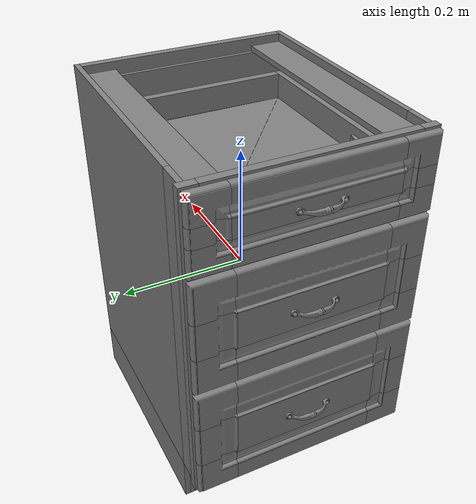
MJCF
<mujoco model="partnet_13aeab12a8ccdb244da5feafe6f1c8fc">
    <compiler angle="radian" />
    <size njmax="500" nconmax="100" />
    <asset>
        <mesh name="original-95" file="original-95.stl" scale="0.4 0.4 0.4" />
        <mesh name="original-86" file="original-86.stl" scale="0.4 0.4 0.4" />
        <mesh name="original-89" file="original-89.stl" scale="0.4 0.4 0.4" />
        <mesh name="original-90" file="original-90.stl" scale="0.4 0.4 0.4" />
        <mesh name="original-91" file="original-91.stl" scale="0.4 0.4 0.4" />
        <mesh name="original-88" file="original-88.stl" scale="0.4 0.4 0.4" />
        <mesh name="original-93" file="original-93.stl" scale="0.4 0.4 0.4" />
        <mesh name="original-87" file="original-87.stl" scale="0.4 0.4 0.4" />
        <mesh name="original-92" file="original-92.stl" scale="0.4 0.4 0.4" />
        <mesh name="original-96" file="original-96.stl" scale="0.4 0.4 0.4" />
        <mesh name="original-78" file="original-78.stl" scale="0.4 0.4 0.4" />
        <mesh name="original-82" file="original-82.stl" scale="0.4 0.4 0.4" />
        <mesh name="original-77" file="original-77.stl" scale="0.4 0.4 0.4" />
        <mesh name="original-83" file="original-83.stl" scale="0.4 0.4 0.4" />
        <mesh name="original-81" file="original-81.stl" scale="0.4 0.4 0.4" />
        <mesh name="original-80" file="original-80.stl" scale="0.4 0.4 0.4" />
        <mesh name="original-98" file="original-98.stl" scale="0.4 0.4 0.4" />
        <mesh name="original-100" file="original-100.stl" scale="0.4 0.4 0.4" />
        <mesh name="original-99" file="original-99.stl" scale="0.4 0.4 0.4" />
        <mesh name="original-84" file="original-84.stl" scale="0.4 0.4 0.4" />
        <mesh name="original-22" file="original-22.stl" scale="0.4 0.4 0.4" />
        <mesh name="original-34" file="original-34.stl" scale="0.4 0.4 0.4" />
        <mesh name="original-38" file="original-38.stl" scale="0.4 0.4 0.4" />
        <mesh name="original-44" file="original-44.stl" scale="0.4 0.4 0.4" />
        <mesh name="original-41" file="original-41.stl" scale="0.4 0.4 0.4" />
        <mesh name="original-35" file="original-35.stl" scale="0.4 0.4 0.4" />
        <mesh name="original-36" file="original-36.stl" scale="0.4 0.4 0.4" />
        <mesh name="original-39" file="original-39.stl" scale="0.4 0.4 0.4" />
        <mesh name="original-40" file="original-40.stl" scale="0.4 0.4 0.4" />
        <mesh name="original-37" file="original-37.stl" scale="0.4 0.4 0.4" />
        <mesh name="original-43" file="original-43.stl" scale="0.4 0.4 0.4" />
        <mesh name="original-26" file="original-26.stl" scale="0.4 0.4 0.4" />
        <mesh name="original-25" file="original-25.stl" scale="0.4 0.4 0.4" />
        <mesh name="original-30" file="original-30.stl" scale="0.4 0.4 0.4" />
        <mesh name="original-31" file="original-31.stl" scale="0.4 0.4 0.4" />
        <mesh name="original-29" file="original-29.stl" scale="0.4 0.4 0.4" />
        <mesh name="original-28" file="original-28.stl" scale="0.4 0.4 0.4" />
        <mesh name="original-46" file="original-46.stl" scale="0.4 0.4 0.4" />
        <mesh name="original-47" file="original-47.stl" scale="0.4 0.4 0.4" />
        <mesh name="original-48" file="original-48.stl" scale="0.4 0.4 0.4" />
        <mesh name="original-32" file="original-32.stl" scale="0.4 0.4 0.4" />
        <mesh name="original-70" file="original-70.stl" scale="0.4 0.4 0.4" />
        <mesh name="original-65" file="original-65.stl" scale="0.4 0.4 0.4" />
        <mesh name="original-66" file="original-66.stl" scale="0.4 0.4 0.4" />
        <mesh name="original-63" file="original-63.stl" scale="0.4 0.4 0.4" />
        <mesh name="original-62" file="original-62.stl" scale="0.4 0.4 0.4" />
        <mesh name="original-67" file="original-67.stl" scale="0.4 0.4 0.4" />
        <mesh name="original-64" file="original-64.stl" scale="0.4 0.4 0.4" />
        <mesh name="original-60" file="original-60.stl" scale="0.4 0.4 0.4" />
        <mesh name="original-61" file="original-61.stl" scale="0.4 0.4 0.4" />
        <mesh name="original-69" file="original-69.stl" scale="0.4 0.4 0.4" />
        <mesh name="original-52" file="original-52.stl" scale="0.4 0.4 0.4" />
        <mesh name="original-56" file="original-56.stl" scale="0.4 0.4 0.4" />
        <mesh name="original-51" file="original-51.stl" scale="0.4 0.4 0.4" />
        <mesh name="original-57" file="original-57.stl" scale="0.4 0.4 0.4" />
        <mesh name="original-54" file="original-54.stl" scale="0.4 0.4 0.4" />
        <mesh name="original-55" file="original-55.stl" scale="0.4 0.4 0.4" />
        <mesh name="original-72" file="original-72.stl" scale="0.4 0.4 0.4" />
        <mesh name="original-73" file="original-73.stl" scale="0.4 0.4 0.4" />
        <mesh name="original-74" file="original-74.stl" scale="0.4 0.4 0.4" />
        <mesh name="original-58" file="original-58.stl" scale="0.4 0.4 0.4" />
        <mesh name="original-21" file="original-21.stl" scale="0.4 0.4 0.4" />
        <mesh name="original-20" file="original-20.stl" scale="0.4 0.4 0.4" />
        <mesh name="original-17" file="original-17.stl" scale="0.4 0.4 0.4" />
        <mesh name="original-15" file="original-15.stl" scale="0.4 0.4 0.4" />
        <mesh name="original-14" file="original-14.stl" scale="0.4 0.4 0.4" />
        <mesh name="original-11" file="original-11.stl" scale="0.4 0.4 0.4" />
        <mesh name="original-10" file="original-10.stl" scale="0.4 0.4 0.4" />
        <mesh name="original-5" file="original-5.stl" scale="0.4 0.4 0.4" />
        <mesh name="original-2" file="original-2.stl" scale="0.4 0.4 0.4" />
        <mesh name="original-4" file="original-4.stl" scale="0.4 0.4 0.4" />
        <mesh name="original-7" file="original-7.stl" scale="0.4 0.4 0.4" />
        <mesh name="original-3" file="original-3.stl" scale="0.4 0.4 0.4" />
        <mesh name="original-8" file="original-8.stl" scale="0.4 0.4 0.4" />
        <mesh name="original-6" file="original-6.stl" scale="0.4 0.4 0.4" />
        <mesh name="original-101" file="original-101.stl" scale="0.4 0.4 0.4" />
        <mesh name="original-18" file="original-18.stl" scale="0.4 0.4 0.4" />
        <mesh name="original-12" file="original-12.stl" scale="0.4 0.4 0.4" />
        <mesh name="original-19" file="original-19.stl" scale="0.4 0.4 0.4" />
        <mesh name="original-16" file="original-16.stl" scale="0.4 0.4 0.4" />
    </asset>
    <worldbody>
    <body>
        <body name="object">
        <geom quat="0.5 0.5 -0.5 -0.5" type="mesh" group="0" mesh="original-21" contype="0" conaffinity="0" />
        <geom quat="0.5 0.5 -0.5 -0.5" type="mesh" group="0" mesh="original-20" contype="0" conaffinity="0" />
        <geom quat="0.5 0.5 -0.5 -0.5" type="mesh" group="0" mesh="original-17" contype="0" conaffinity="0" />
        <geom quat="0.5 0.5 -0.5 -0.5" type="mesh" group="0" mesh="original-15" contype="0" conaffinity="0" />
        <geom quat="0.5 0.5 -0.5 -0.5" type="mesh" group="0" mesh="original-14" contype="0" conaffinity="0" />
        <geom quat="0.5 0.5 -0.5 -0.5" type="mesh" group="0" mesh="original-11" contype="0" conaffinity="0" />
        <geom quat="0.5 0.5 -0.5 -0.5" type="mesh" group="0" mesh="original-10" contype="0" conaffinity="0" />
        <geom quat="0.5 0.5 -0.5 -0.5" type="mesh" group="0" mesh="original-5" contype="0" conaffinity="0" />
        <geom quat="0.5 0.5 -0.5 -0.5" type="mesh" group="0" mesh="original-2" contype="0" conaffinity="0" />
        <geom quat="0.5 0.5 -0.5 -0.5" type="mesh" group="0" mesh="original-4" contype="0" conaffinity="0" />
        <geom quat="0.5 0.5 -0.5 -0.5" type="mesh" group="0" mesh="original-7" contype="0" conaffinity="0" />
        <geom quat="0.5 0.5 -0.5 -0.5" type="mesh" group="0" mesh="original-3" contype="0" conaffinity="0" />
        <geom quat="0.5 0.5 -0.5 -0.5" type="mesh" group="0" mesh="original-8" contype="0" conaffinity="0" />
        <geom quat="0.5 0.5 -0.5 -0.5" type="mesh" group="0" mesh="original-6" contype="0" conaffinity="0" />
        <geom quat="0.5 0.5 -0.5 -0.5" type="mesh" group="0" mesh="original-101" contype="0" conaffinity="0" />
        <geom quat="0.5 0.5 -0.5 -0.5" type="mesh" group="0" mesh="original-18" contype="0" conaffinity="0" />
        <geom quat="0.5 0.5 -0.5 -0.5" type="mesh" group="0" mesh="original-12" contype="0" conaffinity="0" />
        <geom quat="0.5 0.5 -0.5 -0.5" type="mesh" group="0" mesh="original-19" contype="0" conaffinity="0" />
        <geom quat="0.5 0.5 -0.5 -0.5" type="mesh" group="0" mesh="original-16" contype="0" conaffinity="0" />
        <body name="link_0" pos="-0.22647240000000002 -0.046044800000000004 0.23275480000000004" quat="0.5 0.5 -0.5 -0.5">
            <inertial pos="-0.0470948 -0.01140012 -0.1473968" quat="0.707003 -0.00668771 0.00767931 0.707137" mass="30.2182" diaginertia="5.09684 3.26936 2.01892" />
            <joint name="joint_0" pos="0.0 0.0 0.0" axis="0 0 1" type="slide" limited="true" range="0.0 0.32000000000000006" />
            <geom pos="-0.046044800000000004 -0.23275480000000004 -0.22647240000000002" type="mesh" group="0" mesh="original-95" />
            <geom pos="-0.046044800000000004 -0.23275480000000004 -0.22647240000000002" type="mesh" group="0" mesh="original-86" />
            <geom pos="-0.046044800000000004 -0.23275480000000004 -0.22647240000000002" type="mesh" group="0" mesh="original-89" />
            <geom pos="-0.046044800000000004 -0.23275480000000004 -0.22647240000000002" type="mesh" group="0" mesh="original-90" />
            <geom pos="-0.046044800000000004 -0.23275480000000004 -0.22647240000000002" type="mesh" group="0" mesh="original-91" />
            <geom pos="-0.046044800000000004 -0.23275480000000004 -0.22647240000000002" type="mesh" group="0" mesh="original-88" />
            <geom pos="-0.046044800000000004 -0.23275480000000004 -0.22647240000000002" type="mesh" group="0" mesh="original-93" />
            <geom pos="-0.046044800000000004 -0.23275480000000004 -0.22647240000000002" type="mesh" group="0" mesh="original-87" />
            <geom pos="-0.046044800000000004 -0.23275480000000004 -0.22647240000000002" type="mesh" group="0" mesh="original-92" />
            <geom pos="-0.046044800000000004 -0.23275480000000004 -0.22647240000000002" type="mesh" group="0" mesh="original-96" />
            <geom pos="-0.046044800000000004 -0.23275480000000004 -0.22647240000000002" type="mesh" group="0" mesh="original-78" />
            <geom pos="-0.046044800000000004 -0.23275480000000004 -0.22647240000000002" type="mesh" group="0" mesh="original-82" />
            <geom pos="-0.046044800000000004 -0.23275480000000004 -0.22647240000000002" type="mesh" group="0" mesh="original-77" />
            <geom pos="-0.046044800000000004 -0.23275480000000004 -0.22647240000000002" type="mesh" group="0" mesh="original-83" />
            <geom pos="-0.046044800000000004 -0.23275480000000004 -0.22647240000000002" type="mesh" group="0" mesh="original-81" />
            <geom pos="-0.046044800000000004 -0.23275480000000004 -0.22647240000000002" type="mesh" group="0" mesh="original-80" />
            <geom pos="-0.046044800000000004 -0.23275480000000004 -0.22647240000000002" type="mesh" group="0" mesh="original-98" />
            <geom pos="-0.046044800000000004 -0.23275480000000004 -0.22647240000000002" type="mesh" group="0" mesh="original-100" />
            <geom pos="-0.046044800000000004 -0.23275480000000004 -0.22647240000000002" type="mesh" group="0" mesh="original-99" />
            <geom pos="-0.046044800000000004 -0.23275480000000004 -0.22647240000000002" type="mesh" group="0" mesh="original-84" />
        </body>
        <body name="link_1" pos="0.18832400000000002 0.049053200000000005 -0.13653800000000002" quat="0.5 0.5 -0.5 -0.5">
            <inertial pos="0.047898800000000005 -0.001041772 0.2659032" quat="0.706634 -0.0172895 0.0178523 0.707143" mass="57.7058" diaginertia="10.5543 7.48265 5.00352" />
            <joint name="joint_1" pos="0.0 0.0 0.0" axis="0 0 1" type="slide" limited="true" range="0.0 0.32000000000000006" />
            <geom pos="0.049053200000000005 0.13653800000000002 0.18832400000000002" type="mesh" group="0" mesh="original-22" />
            <geom pos="0.049053200000000005 0.13653800000000002 0.18832400000000002" type="mesh" group="0" mesh="original-34" />
            <geom pos="0.049053200000000005 0.13653800000000002 0.18832400000000002" type="mesh" group="0" mesh="original-38" />
            <geom pos="0.049053200000000005 0.13653800000000002 0.18832400000000002" type="mesh" group="0" mesh="original-44" />
            <geom pos="0.049053200000000005 0.13653800000000002 0.18832400000000002" type="mesh" group="0" mesh="original-41" />
            <geom pos="0.049053200000000005 0.13653800000000002 0.18832400000000002" type="mesh" group="0" mesh="original-35" />
            <geom pos="0.049053200000000005 0.13653800000000002 0.18832400000000002" type="mesh" group="0" mesh="original-36" />
            <geom pos="0.049053200000000005 0.13653800000000002 0.18832400000000002" type="mesh" group="0" mesh="original-39" />
            <geom pos="0.049053200000000005 0.13653800000000002 0.18832400000000002" type="mesh" group="0" mesh="original-40" />
            <geom pos="0.049053200000000005 0.13653800000000002 0.18832400000000002" type="mesh" group="0" mesh="original-37" />
            <geom pos="0.049053200000000005 0.13653800000000002 0.18832400000000002" type="mesh" group="0" mesh="original-43" />
            <geom pos="0.049053200000000005 0.13653800000000002 0.18832400000000002" type="mesh" group="0" mesh="original-26" />
            <geom pos="0.049053200000000005 0.13653800000000002 0.18832400000000002" type="mesh" group="0" mesh="original-25" />
            <geom pos="0.049053200000000005 0.13653800000000002 0.18832400000000002" type="mesh" group="0" mesh="original-30" />
            <geom pos="0.049053200000000005 0.13653800000000002 0.18832400000000002" type="mesh" group="0" mesh="original-31" />
            <geom pos="0.049053200000000005 0.13653800000000002 0.18832400000000002" type="mesh" group="0" mesh="original-29" />
            <geom pos="0.049053200000000005 0.13653800000000002 0.18832400000000002" type="mesh" group="0" mesh="original-28" />
            <geom pos="0.049053200000000005 0.13653800000000002 0.18832400000000002" type="mesh" group="0" mesh="original-46" />
            <geom pos="0.049053200000000005 0.13653800000000002 0.18832400000000002" type="mesh" group="0" mesh="original-47" />
            <geom pos="0.049053200000000005 0.13653800000000002 0.18832400000000002" type="mesh" group="0" mesh="original-48" />
            <geom pos="0.049053200000000005 0.13653800000000002 0.18832400000000002" type="mesh" group="0" mesh="original-32" />
        </body>
        <body name="link_2" pos="0.18832400000000002 0.02103852 0.0440764" quat="0.5 0.5 -0.5 -0.5">
            <inertial pos="0.019888680000000002 0.009478680000000001 0.26054879999999997" quat="0.706738 -0.0118702 0.0125251 0.707264" mass="55.471" diaginertia="10.1863 7.06339 4.7455" />
            <joint name="joint_2" pos="0.0 0.0 0.0" axis="0 0 1" type="slide" limited="true" range="0.0 0.32000000000000006" />
            <geom pos="0.02103852 -0.0440764 0.18832400000000002" type="mesh" group="0" mesh="original-70" />
            <geom pos="0.02103852 -0.0440764 0.18832400000000002" type="mesh" group="0" mesh="original-65" />
            <geom pos="0.02103852 -0.0440764 0.18832400000000002" type="mesh" group="0" mesh="original-66" />
            <geom pos="0.02103852 -0.0440764 0.18832400000000002" type="mesh" group="0" mesh="original-63" />
            <geom pos="0.02103852 -0.0440764 0.18832400000000002" type="mesh" group="0" mesh="original-62" />
            <geom pos="0.02103852 -0.0440764 0.18832400000000002" type="mesh" group="0" mesh="original-67" />
            <geom pos="0.02103852 -0.0440764 0.18832400000000002" type="mesh" group="0" mesh="original-64" />
            <geom pos="0.02103852 -0.0440764 0.18832400000000002" type="mesh" group="0" mesh="original-60" />
            <geom pos="0.02103852 -0.0440764 0.18832400000000002" type="mesh" group="0" mesh="original-61" />
            <geom pos="0.02103852 -0.0440764 0.18832400000000002" type="mesh" group="0" mesh="original-69" />
            <geom pos="0.02103852 -0.0440764 0.18832400000000002" type="mesh" group="0" mesh="original-52" />
            <geom pos="0.02103852 -0.0440764 0.18832400000000002" type="mesh" group="0" mesh="original-56" />
            <geom pos="0.02103852 -0.0440764 0.18832400000000002" type="mesh" group="0" mesh="original-51" />
            <geom pos="0.02103852 -0.0440764 0.18832400000000002" type="mesh" group="0" mesh="original-57" />
            <geom pos="0.02103852 -0.0440764 0.18832400000000002" type="mesh" group="0" mesh="original-54" />
            <geom pos="0.02103852 -0.0440764 0.18832400000000002" type="mesh" group="0" mesh="original-55" />
            <geom pos="0.02103852 -0.0440764 0.18832400000000002" type="mesh" group="0" mesh="original-72" />
            <geom pos="0.02103852 -0.0440764 0.18832400000000002" type="mesh" group="0" mesh="original-73" />
            <geom pos="0.02103852 -0.0440764 0.18832400000000002" type="mesh" group="0" mesh="original-74" />
            <geom pos="0.02103852 -0.0440764 0.18832400000000002" type="mesh" group="0" mesh="original-58" />
        </body>
    </body>
        <site name="bottom_site" pos="0 0 -0.3" rgba="0 0 0 0" size="0.005" />
        <site name="top_site" pos="0 0 0.3" rgba="0 0 0 0" size="0.005" />
        <site name="horizontal_radius_site" pos="0.3 0 0" rgba="0 0 0 0" size="0.1" />
    </body>
    </worldbody>
</mujoco>
